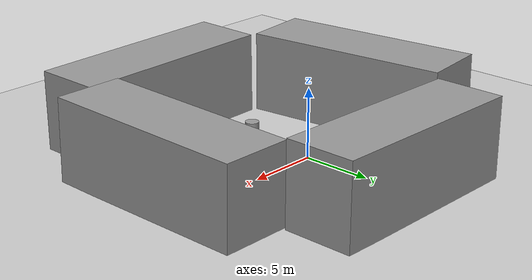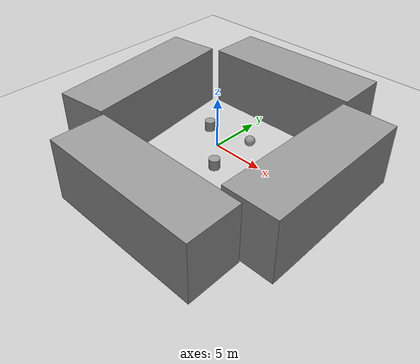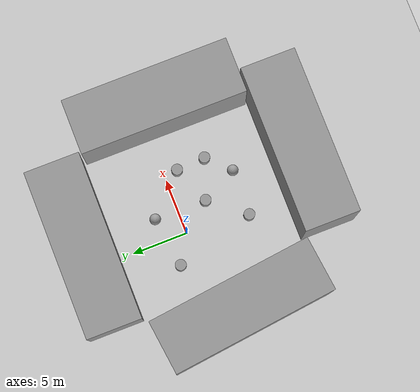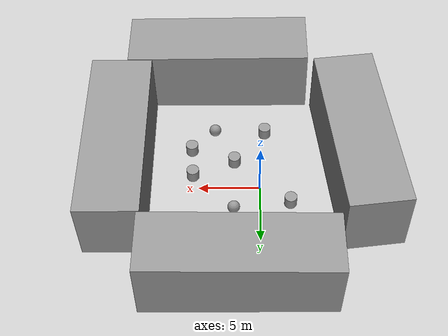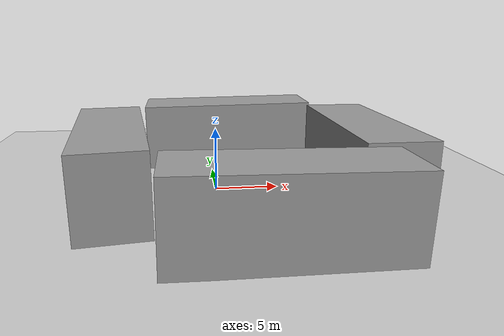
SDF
<sdf version="1.7">
 <world name="default">
  <light name="sun" type="directional">
   <pose>0 0 10 0 -0 0</pose>
   <diffuse>0.8 0.8 0.8 1</diffuse>
   <specular>0.2 0.2 0.2 1</specular>
   <attenuation>
    <range>1000</range>
    <constant>0.9</constant>
    <linear>0.01</linear>
    <quadratic>0.001</quadratic>
   </attenuation>
   <direction>-0.5 0.1 -0.9</direction>
   <spot><inner_angle>0</inner_angle><outer_angle>0</outer_angle><falloff>0</falloff></spot>
  </light>
  <model name="ground_plane">
   <static>1</static>
   <link name="link">
    <collision name="collision">
     <geometry><plane><normal>0 0 1</normal><size>100 100</size></plane></geometry>
     <surface><friction><ode><mu>100</mu><mu2>50</mu2></ode></friction></surface>
    </collision>
    <visual name="visual">
     <cast_shadows>0</cast_shadows>
     <geometry><plane><normal>0 0 1</normal><size>100 100</size></plane></geometry>
     <material>
      <script><uri>file://media/materials/scripts/gazebo.material</uri><name>Gazebo/Grey</name></script>
     </material>
    </visual>
   </link>
  </model>
  <gravity>0 0 -9.8</gravity>
  <magnetic_field>6e-06 2.3e-05 -4.2e-05</magnetic_field>
  <atmosphere type="adiabatic"/>
  <physics type="ode">
   <max_step_size>0.001</max_step_size>
   <real_time_factor>1</real_time_factor>
   <real_time_update_rate>1000</real_time_update_rate>
  </physics>
  <scene><ambient>0.4 0.4 0.4 1</ambient><background>0.7 0.7 0.7 1</background><shadows>1</shadows></scene>
  <audio><device>default</device></audio>
  <spherical_coordinates>
   <surface_model>EARTH_WGS84</surface_model>
   <latitude_deg>0</latitude_deg>
   <longitude_deg>0</longitude_deg>
   <elevation>0</elevation>
   <heading_deg>0</heading_deg>
  </spherical_coordinates>
  <model name="unit_box_clone">
   <pose>11.3738 -1.45846 2.83289 -0.012903 -0 4e-06</pose>
   <link name="link">
    <inertial>
     <mass>1</mass>
     <inertia>
      <ixx>0.166667</ixx>
      <ixy>0</ixy>
      <ixz>0</ixz>
      <iyy>0.166667</iyy>
      <iyz>0</iyz>
      <izz>0.166667</izz>
     </inertia>
    </inertial>
    <collision name="collision"><geometry><box><size>4.94265 15.0056 5.85794</size></box></geometry></collision>
    <visual name="visual">
     <geometry><box><size>4.94265 15.0056 5.85794</size></box></geometry>
     <material>
      <script><name>Gazebo/Grey</name><uri>file://media/materials/scripts/gazebo.material</uri></script>
     </material>
    </visual>
   </link>
  </model>
  <model name="unit_box_clone_clone">
   <pose>-7.87567 -1.92711 2.92894 -4e-06 -5e-06 0.120535</pose>
   <link name="link">
    <inertial>
     <mass>1</mass>
     <inertia>
      <ixx>0.166667</ixx>
      <ixy>0</ixy>
      <ixz>0</ixz>
      <iyy>0.166667</iyy>
      <iyz>0</iyz>
      <izz>0.166667</izz>
     </inertia>
    </inertial>
    <collision name="collision"><geometry><box><size>4.94264 15.0056 5.85794</size></box></geometry></collision>
    <visual name="visual">
     <geometry><box><size>4.94264 15.0056 5.85794</size></box></geometry>
     <material>
      <script><name>Gazebo/Grey</name><uri>file://media/materials/scripts/gazebo.material</uri></script>
     </material>
    </visual>
   </link>
  </model>
  <model name="unit_box_clone_clone_0">
   <pose>1.66279 8.70382 2.83295 0.012896 -0 -1.57079</pose>
   <link name="link">
    <inertial>
     <mass>1</mass>
     <inertia>
      <ixx>0.166667</ixx>
      <ixy>0</ixy>
      <ixz>0</ixz>
      <iyy>0.166667</iyy>
      <iyz>0</iyz>
      <izz>0.166667</izz>
     </inertia>
    </inertial>
    <collision name="collision"><geometry><box><size>4.94264 15.0056 5.85794</size></box></geometry></collision>
    <visual name="visual">
     <geometry><box><size>4.94264 15.0056 5.85794</size></box></geometry>
     <material>
      <script><name>Gazebo/Grey</name><uri>file://media/materials/scripts/gazebo.material</uri></script>
     </material>
    </visual>
   </link>
  </model>
  <model name="unit_box_clone_clone_1">
   <pose>3.42987 -11.6197 2.8329 0.012903 -0 1.57079</pose>
   <link name="link">
    <inertial>
     <mass>1</mass>
     <inertia>
      <ixx>0.166667</ixx>
      <ixy>0</ixy>
      <ixz>0</ixz>
      <iyy>0.166667</iyy>
      <iyz>0</iyz>
      <izz>0.166667</izz>
     </inertia>
    </inertial>
    <collision name="collision"><geometry><box><size>4.94264 15.0056 5.85794</size></box></geometry></collision>
    <visual name="visual">
     <geometry><box><size>4.94264 15.0056 5.85794</size></box></geometry>
     <material>
      <script><name>Gazebo/Grey</name><uri>file://media/materials/scripts/gazebo.material</uri></script>
     </material>
    </visual>
   </link>
  </model>
  <model name="unit_sphere">
   <pose>3.7242 -5.77369 0.5 0 -0 0</pose>
   <link name="link">
    <inertial>
     <mass>1</mass>
     <inertia><ixx>0.1</ixx><ixy>0</ixy><ixz>0</ixz><iyy>0.1</iyy><iyz>0</iyz><izz>0.1</izz></inertia>
    </inertial>
    <collision name="collision"><geometry><sphere><radius>0.5</radius></sphere></geometry></collision>
    <visual name="visual">
     <geometry><sphere><radius>0.5</radius></sphere></geometry>
     <material>
      <script><name>Gazebo/Grey</name><uri>file://media/materials/scripts/gazebo.material</uri></script>
     </material>
    </visual>
   </link>
  </model>
  <model name="unit_cylinder">
   <pose>5.63291 -3.8293 0.5 -0 -0 -0</pose>
   <link name="link">
    <inertial>
     <mass>1</mass>
     <inertia><ixx>0.145833</ixx><ixy>0</ixy><ixz>0</ixz><iyy>0.145833</iyy><iyz>0</iyz><izz>0.125</izz></inertia>
    </inertial>
    <collision name="collision">
     <geometry><cylinder><radius>0.5</radius><length>1</length></cylinder></geometry>
    </collision>
    <visual name="visual">
     <geometry><cylinder><radius>0.5</radius><length>1</length></cylinder></geometry>
     <material>
      <script><name>Gazebo/Grey</name><uri>file://media/materials/scripts/gazebo.material</uri></script>
     </material>
    </visual>
   </link>
  </model>
  <model name="unit_cylinder_0">
   <pose>5.48561 -1.20014 0.5 -0 -0 -0</pose>
   <link name="link">
    <inertial>
     <mass>1</mass>
     <inertia><ixx>0.145833</ixx><ixy>0</ixy><ixz>0</ixz><iyy>0.145833</iyy><iyz>0</iyz><izz>0.125</izz></inertia>
    </inertial>
    <collision name="collision">
     <geometry><cylinder><radius>0.5</radius><length>1</length></cylinder></geometry>
    </collision>
    <visual name="visual">
     <geometry><cylinder><radius>0.5</radius><length>1</length></cylinder></geometry>
     <material>
      <script><name>Gazebo/Grey</name><uri>file://media/materials/scripts/gazebo.material</uri></script>
     </material>
    </visual>
   </link>
  </model>
  <model name="unit_cylinder_1">
   <pose>-0.47156 -5.68534 0.5 -0 -0 -0</pose>
   <link name="link">
    <inertial>
     <mass>1</mass>
     <inertia><ixx>0.145833</ixx><ixy>0</ixy><ixz>0</ixz><iyy>0.145833</iyy><iyz>0</iyz><izz>0.125</izz></inertia>
    </inertial>
    <collision name="collision">
     <geometry><cylinder><radius>0.5</radius><length>1</length></cylinder></geometry>
    </collision>
    <visual name="visual">
     <geometry><cylinder><radius>0.5</radius><length>1</length></cylinder></geometry>
     <material>
      <script><name>Gazebo/Grey</name><uri>file://media/materials/scripts/gazebo.material</uri></script>
     </material>
    </visual>
   </link>
  </model>
  <model name="unit_cylinder_2">
   <pose>2.08109 -2.57131 0.5 -0 -0 -0</pose>
   <link name="link">
    <inertial>
     <mass>1</mass>
     <inertia><ixx>0.145833</ixx><ixy>0</ixy><ixz>0</ixz><iyy>0.145833</iyy><iyz>0</iyz><izz>0.125</izz></inertia>
    </inertial>
    <collision name="collision">
     <geometry><cylinder><radius>0.5</radius><length>1</length></cylinder></geometry>
    </collision>
    <visual name="visual">
     <geometry><cylinder><radius>0.5</radius><length>1</length></cylinder></geometry>
     <material>
      <script><name>Gazebo/Grey</name><uri>file://media/materials/scripts/gazebo.material</uri></script>
     </material>
    </visual>
   </link>
  </model>
  <model name="unit_cylinder_3">
   <pose>-2.46184 1.50596 0.5 -0 -0 -0</pose>
   <link name="link">
    <inertial>
     <mass>1</mass>
     <inertia><ixx>0.145833</ixx><ixy>0</ixy><ixz>0</ixz><iyy>0.145833</iyy><iyz>0</iyz><izz>0.125</izz></inertia>
    </inertial>
    <collision name="collision">
     <geometry><cylinder><radius>0.5</radius><length>1</length></cylinder></geometry>
    </collision>
    <visual name="visual">
     <geometry><cylinder><radius>0.5</radius><length>1</length></cylinder></geometry>
     <material>
      <script><name>Gazebo/Grey</name><uri>file://media/materials/scripts/gazebo.material</uri></script>
     </material>
    </visual>
   </link>
  </model>
  <model name="unit_sphere_0">
   <pose>2.1148 2.14159 0.5 0 -0 0</pose>
   <link name="link">
    <inertial>
     <mass>1</mass>
     <inertia><ixx>0.1</ixx><ixy>0</ixy><ixz>0</ixz><iyy>0.1</iyy><iyz>0</iyz><izz>0.1</izz></inertia>
    </inertial>
    <collision name="collision"><geometry><sphere><radius>0.5</radius></sphere></geometry></collision>
    <visual name="visual">
     <geometry><sphere><radius>0.5</radius></sphere></geometry>
     <material>
      <script><name>Gazebo/Grey</name><uri>file://media/materials/scripts/gazebo.material</uri></script>
     </material>
    </visual>
   </link>
  </model>
 </world>
</sdf>
